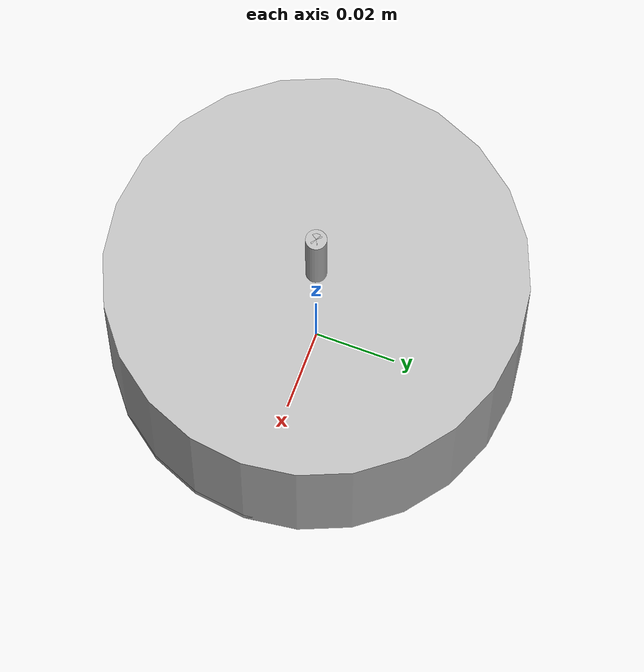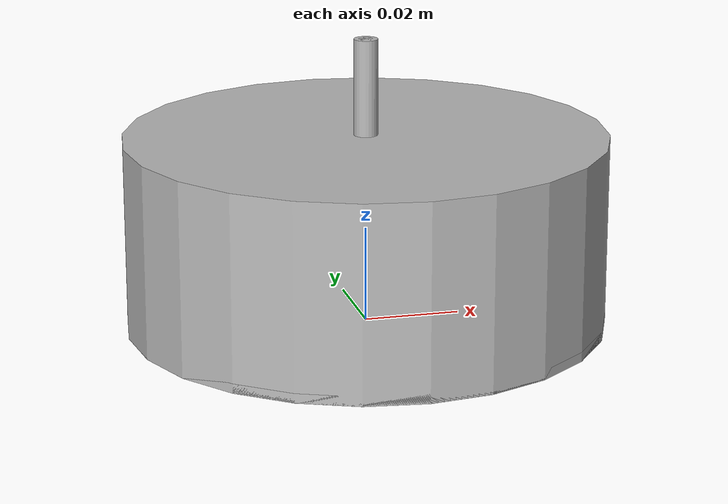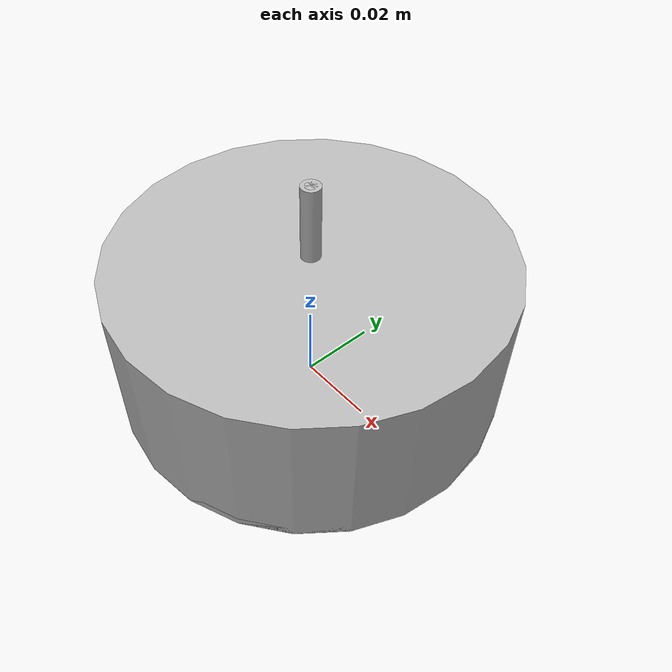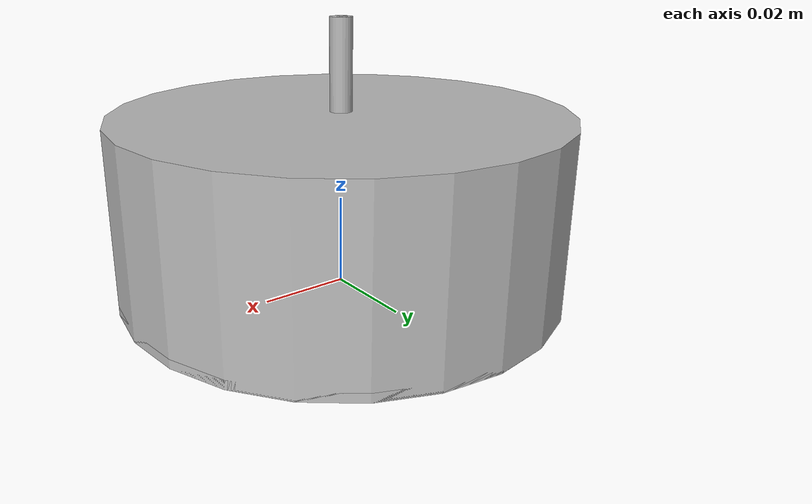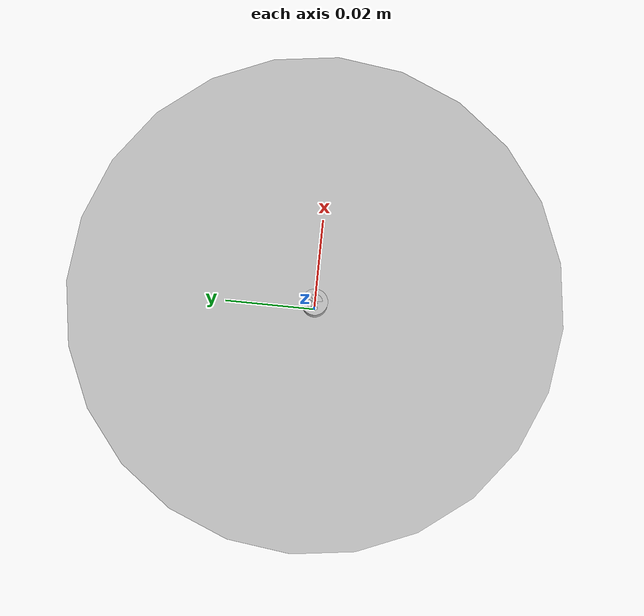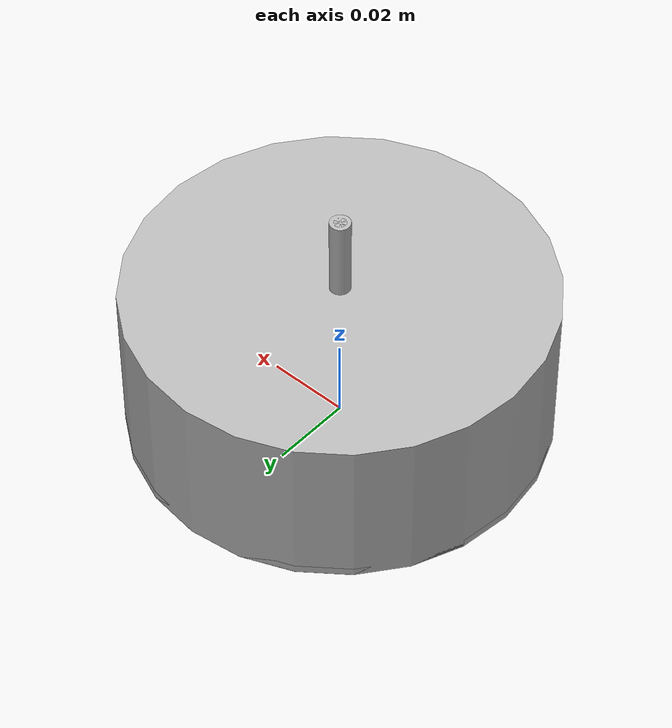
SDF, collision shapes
<?xml version="1.0" ?>
<sdf version="1.5">
  <model name="gurdy">

    <link name="base_link">
      <pose>0 0 0 0 0 0</pose>
      <inertial>
        <inertia>
          <ixx>0.000125066666667</ixx>
          <ixy>0</ixy>
          <ixz>0</ixz>
          <iyy>0.000125066666667</iyy>
          <iyz>0</iyz>
          <izz>0.00025</izz>
        </inertia>
        <mass>0.2</mass>
      </inertial>
      <collision name="collision">
        <pose>0 0 0.001 0 0 0</pose>
        <geometry>
          <cylinder>
            <radius>0.05</radius>
            <length>0.002</length>
          </cylinder>
        </geometry>
        <surface>
          <friction>
            <ode>
              <mu>10</mu>
              <mu2>10</mu2>
              <fdir1>0 0 0</fdir1>
              <slip1>0</slip1>
              <slip2>0</slip2>
            </ode>
          </friction>
        </surface>
      </collision>
      <visual name="visual">
        <pose>0 0 0 0 0 0</pose>
        <geometry>
          <mesh>
            <uri>model://gurdy/meshes/gurdy_base_with_pegs_v2.dae</uri>
          </mesh>
        </geometry>
      </visual>
    </link>

    <link name="lowerleg1_link">
      <pose>0 0 0 0 0 0</pose>
      <inertial>
        <pose>0 0 0.03 0 0 0</pose>
        <inertia>
          <ixx>3.005625e-05</ixx>
          <ixy>0</ixy>
          <ixz>0</ixz>
          <iyy>3.005625e-05</iyy>
          <iyz>0</iyz>
          <izz>1.125e-07</izz>
        </inertia>
        <mass>0.1</mass>
      </inertial>
      <collision name="collision">
        <pose>0 0 0.03 0 0 0</pose>
        <geometry>
          <cylinder>
            <radius>0.0015</radius>
            <length>0.06</length>
          </cylinder>
        </geometry>
        <surface>
          <friction>
            <ode>
              <mu>10</mu>
              <mu2>10</mu2>
              <fdir1>0 0 0</fdir1>
              <slip1>0</slip1>
              <slip2>0</slip2>
            </ode>
          </friction>
        </surface>
      </collision>
      <visual name="visual">
        <pose>0 0 0 0 0 0</pose>
        <geometry>
          <mesh>
            <uri>model://gurdy/meshes/gurdy_lowerleg_v2.dae</uri>
          </mesh>
        </geometry>
      </visual>
    </link>

    <link name="upperleg1_link">
      <pose>0 0 0 0 0 0</pose>
      <inertial>
        <pose>0 0 0.03 0 0 0</pose>
        <inertia>
          <ixx>3.015625e-05</ixx>
          <ixy>0</ixy>
          <ixz>0</ixz>
          <iyy>3.015625e-05</iyy>
          <iyz>0</iyz>
          <izz>3.125e-07</izz>
        </inertia>
        <mass>0.1</mass>
      </inertial>
      <collision name="collision">
        <pose>0 0 0.03 0 0 0</pose>
        <geometry>
          <cylinder>
            <radius>0.0025</radius>
            <length>0.06</length>
          </cylinder>
        </geometry>
        <surface>
          <friction>
            <ode>
              <mu>10</mu>
              <mu2>10</mu2>
              <fdir1>0 0 0</fdir1>
              <slip1>0</slip1>
              <slip2>0</slip2>
            </ode>
          </friction>
        </surface>
      </collision>
      <visual name="visual">
        <pose>0 0 0 0 0 0</pose>
        <geometry>
          <mesh>
            <uri>model://gurdy/meshes/gurdy_higherleg_v2.dae</uri>
          </mesh>
        </geometry>
      </visual>
    </link>

    <link name="peg_link">
      <pose>0 0 0 0 0 0</pose>
      <inertial>
        <pose>-0.005 0 0 0 0 0</pose>
        <inertia>
          <ixx>2.24166666667e-06</ixx>
          <ixy>0</ixy>
          <ixz>0</ixz>
          <iyy>4.16666666667e-06</iyy>
          <iyz>0</iyz>
          <izz>4.74166666667e-06</izz>
        </inertia>
        <mass>0.1</mass>
      </inertial>
      <collision name="collision">
        <pose>-0.005 0 0 0 0 0</pose>
        <geometry>
          <box>
            <size>0.02 0.013 0.01</size>
          </box>
        </geometry>
        <surface>
          <friction>
            <ode>
              <mu>10</mu>
              <mu2>10</mu2>
              <fdir1>0 0 0</fdir1>
              <slip1>0</slip1>
              <slip2>0</slip2>
            </ode>
          </friction>
        </surface>
      </collision>
      <visual name="visual">
        <pose>0 0 0 0 0 0</pose>
        <geometry>
          <mesh>
            <uri>model://gurdy/meshes/gurdy_base_peg.dae</uri>
          </mesh>
        </geometry>
      </visual>
    </link>
    -->
    <link name="head_link">
      <pose>0 0 0 0 0 0</pose>
      <inertial>
        <pose>0 0 0.02 0 0 0</pose>
        <inertia>
          <ixx>0.000455</ixx>
          <ixy>0</ixy>
          <ixz>0</ixz>
          <iyy>0.000455</iyy>
          <iyz>0</iyz>
          <izz>0.00075</izz>
        </inertia>
        <mass>0.6</mass>
      </inertial>
      <collision name="collision">
        <pose>0 0 0.02 0 0 0</pose>
        <geometry>
          <cylinder>
            <radius>0.05</radius>
            <length>0.04</length>
          </cylinder>
        </geometry>
        <surface>
          <friction>
            <ode>
              <mu>10</mu>
              <mu2>10</mu2>
              <fdir1>0 0 0</fdir1>
              <slip1>0</slip1>
              <slip2>0</slip2>
            </ode>
          </friction>
        </surface>
      </collision>
      <visual name="visual">
        <pose>0 0 0 0 0 0</pose>
        <geometry>
          <mesh>
            <uri>model://gurdy/meshes/gurdy_head_v2.dae</uri>
          </mesh>
        </geometry>
      </visual>
    </link>

  </model>
</sdf>
